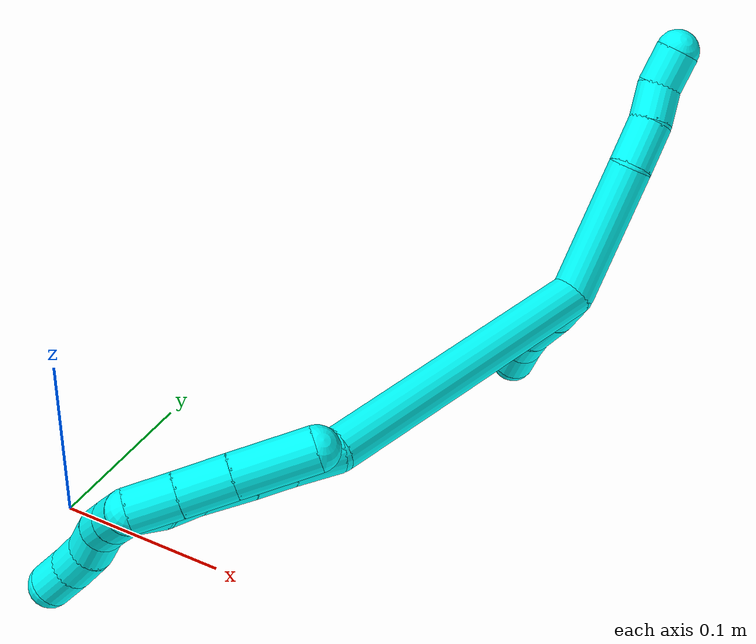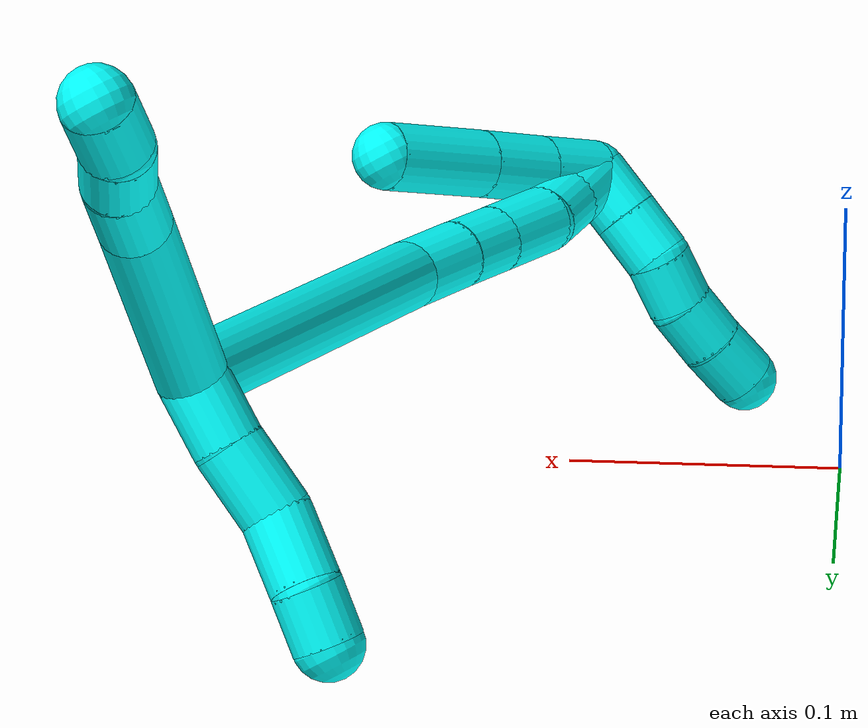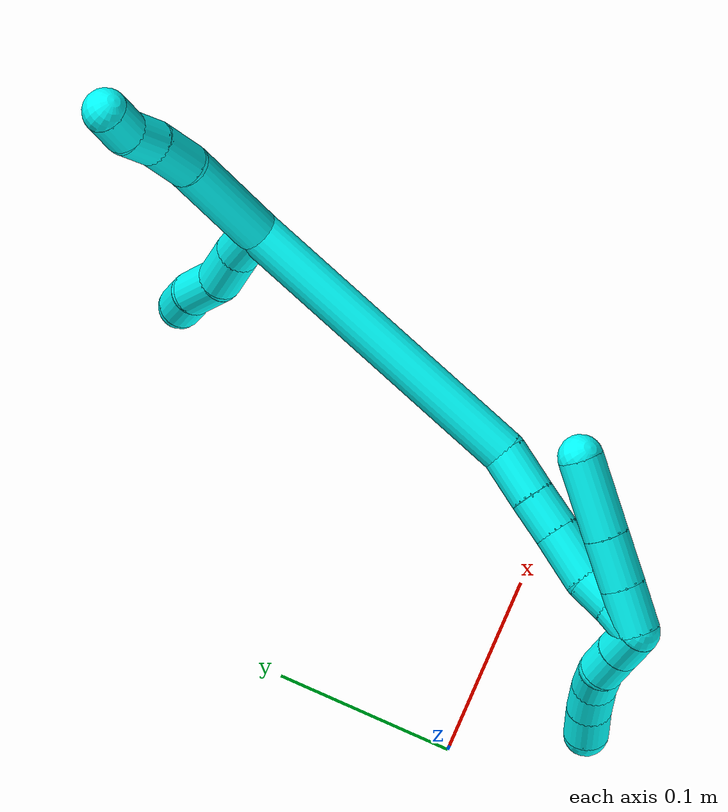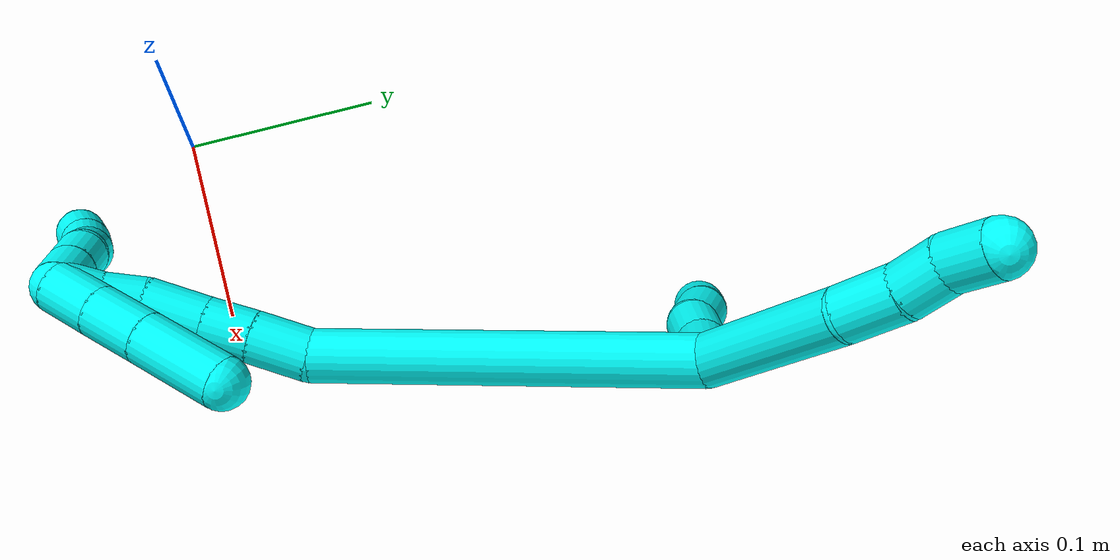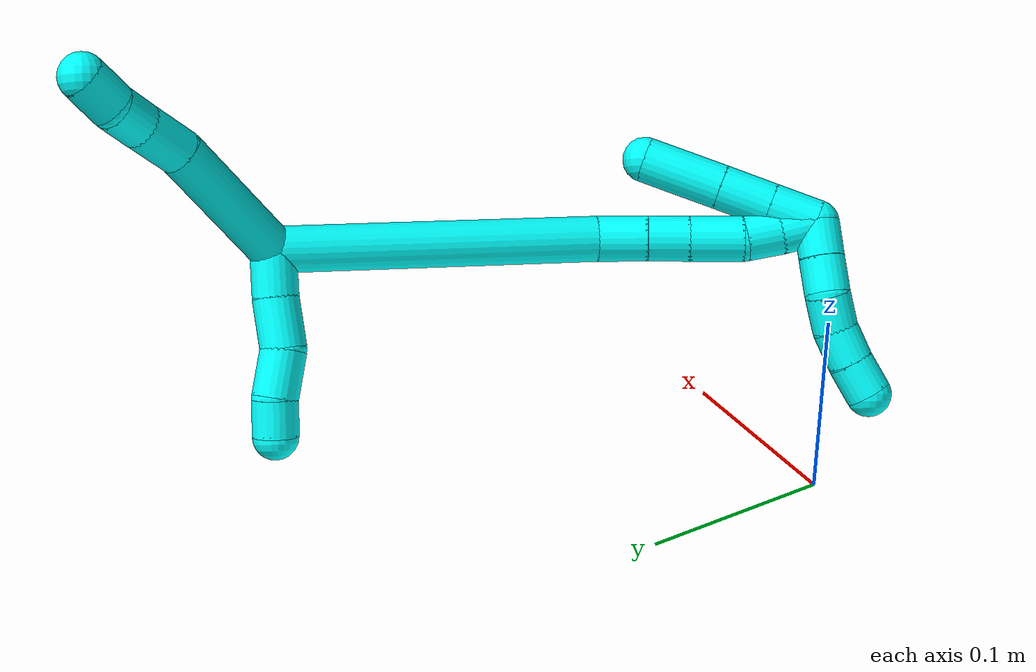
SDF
<sdf version="1.7">
 <world name="default">
  <model name="3">
   <static>0</static>
   <link name="3">
    <collision name="collision-cylinder-e_1_2_8">
     <pose>-0.010058 0.028916 0.024742 -0.863038 -0.258393 0.119504</pose>
     <geometry><cylinder><radius>0.0125</radius><length>0.078726</length></cylinder></geometry>
     <surface>
      <friction><ode><mu>1.16</mu><mu2>1.16</mu2><slip1>0</slip1><slip2>0</slip2></ode></friction>
      <contact><ode><kp>1e+06</kp><kd>1</kd><max_vel>0</max_vel><min_depth>0.001</min_depth></ode></contact>
     </surface>
    </collision>
    <visual name="visual-cylinder-e_1_2_8">
     <pose>-0.010058 0.028916 0.024742 -0.863038 -0.258393 0.119504</pose>
     <geometry><cylinder><radius>0.0125</radius><length>0.078726</length></cylinder></geometry>
     <material><ambient>0.003922 1 0.996078 1</ambient></material>
    </visual>
    <collision name="collision-cylinder-e_2_8_9">
     <pose>-0.023659 0.069598 0.055884 -1.07261 -0.258528 0.154229</pose>
     <geometry><cylinder><radius>0.0125</radius><length>0.02771</length></cylinder></geometry>
     <surface>
      <friction><ode><mu>1.16</mu><mu2>1.16</mu2><slip1>0</slip1><slip2>0</slip2></ode></friction>
      <contact><ode><kp>1e+06</kp><kd>1</kd><max_vel>0</max_vel><min_depth>0.001</min_depth></ode></contact>
     </surface>
    </collision>
    <visual name="visual-cylinder-e_2_8_9">
     <pose>-0.023659 0.069598 0.055884 -1.07261 -0.258528 0.154229</pose>
     <geometry><cylinder><radius>0.0125</radius><length>0.02771</length></cylinder></geometry>
     <material><ambient>0.003922 1 0.996078 1</ambient></material>
    </visual>
    <collision name="collision-cylinder-e_3_9_10">
     <pose>-0.031672 0.090077 0.066561 -1.11439 -0.431651 0.271514</pose>
     <geometry><cylinder><radius>0.0125</radius><length>0.021371</length></cylinder></geometry>
     <surface>
      <friction><ode><mu>1.16</mu><mu2>1.16</mu2><slip1>0</slip1><slip2>0</slip2></ode></friction>
      <contact><ode><kp>1e+06</kp><kd>1</kd><max_vel>0</max_vel><min_depth>0.001</min_depth></ode></contact>
     </surface>
    </collision>
    <visual name="visual-cylinder-e_3_9_10">
     <pose>-0.031672 0.090077 0.066561 -1.11439 -0.431651 0.271514</pose>
     <geometry><cylinder><radius>0.0125</radius><length>0.021371</length></cylinder></geometry>
     <material><ambient>0.003922 1 0.996078 1</ambient></material>
    </visual>
    <collision name="collision-cylinder-e_4_10_6">
     <pose>-0.038431 0.107151 0.077765 -0.879082 -0.207753 0.097964</pose>
     <geometry><cylinder><radius>0.0125</radius><length>0.022192</length></cylinder></geometry>
     <surface>
      <friction><ode><mu>1.16</mu><mu2>1.16</mu2><slip1>0</slip1><slip2>0</slip2></ode></friction>
      <contact><ode><kp>1e+06</kp><kd>1</kd><max_vel>0</max_vel><min_depth>0.001</min_depth></ode></contact>
     </surface>
    </collision>
    <visual name="visual-cylinder-e_4_10_6">
     <pose>-0.038431 0.107151 0.077765 -0.879082 -0.207753 0.097964</pose>
     <geometry><cylinder><radius>0.0125</radius><length>0.022192</length></cylinder></geometry>
     <material><ambient>0.003922 1 0.996078 1</ambient></material>
    </visual>
    <collision name="collision-cylinder-e_1_2_11">
     <pose>-1.4e-05 -0.000151 -0.012806 3.1298 -0.001055 -0.178424</pose>
     <geometry><cylinder><radius>0.0125</radius><length>0.025614</length></cylinder></geometry>
     <surface>
      <friction><ode><mu>1.16</mu><mu2>1.16</mu2><slip1>0</slip1><slip2>0</slip2></ode></friction>
      <contact><ode><kp>1e+06</kp><kd>1</kd><max_vel>0</max_vel><min_depth>0.001</min_depth></ode></contact>
     </surface>
    </collision>
    <visual name="visual-cylinder-e_1_2_11">
     <pose>-1.4e-05 -0.000151 -0.012806 3.1298 -0.001055 -0.178424</pose>
     <geometry><cylinder><radius>0.0125</radius><length>0.025614</length></cylinder></geometry>
     <material><ambient>0.003922 1 0.996078 1</ambient></material>
    </visual>
    <collision name="collision-cylinder-e_2_11_12">
     <pose>-0.001534 -0.001314 -0.039361 3.06813 -0.108918 -1.95534</pose>
     <geometry><cylinder><radius>0.0125</radius><length>0.027736</length></cylinder></geometry>
     <surface>
      <friction><ode><mu>1.16</mu><mu2>1.16</mu2><slip1>0</slip1><slip2>0</slip2></ode></friction>
      <contact><ode><kp>1e+06</kp><kd>1</kd><max_vel>0</max_vel><min_depth>0.001</min_depth></ode></contact>
     </surface>
    </collision>
    <visual name="visual-cylinder-e_2_11_12">
     <pose>-0.001534 -0.001314 -0.039361 3.06813 -0.108918 -1.95534</pose>
     <geometry><cylinder><radius>0.0125</radius><length>0.027736</length></cylinder></geometry>
     <material><ambient>0.003922 1 0.996078 1</ambient></material>
    </visual>
    <collision name="collision-cylinder-e_3_12_13">
     <pose>-0.00241 0.000466 -0.066 -2.92836 0.04784 -0.439862</pose>
     <geometry><cylinder><radius>0.0125</radius><length>0.02641</length></cylinder></geometry>
     <surface>
      <friction><ode><mu>1.16</mu><mu2>1.16</mu2><slip1>0</slip1><slip2>0</slip2></ode></friction>
      <contact><ode><kp>1e+06</kp><kd>1</kd><max_vel>0</max_vel><min_depth>0.001</min_depth></ode></contact>
     </surface>
    </collision>
    <visual name="visual-cylinder-e_3_12_13">
     <pose>-0.00241 0.000466 -0.066 -2.92836 0.04784 -0.439862</pose>
     <geometry><cylinder><radius>0.0125</radius><length>0.02641</length></cylinder></geometry>
     <material><ambient>0.003922 1 0.996078 1</ambient></material>
    </visual>
    <collision name="collision-cylinder-e_4_13_5">
     <pose>-0.000564 0.002953 -0.088934 3.11135 0.120377 2.64979</pose>
     <geometry><cylinder><radius>0.0125</radius><length>0.02024</length></cylinder></geometry>
     <surface>
      <friction><ode><mu>1.16</mu><mu2>1.16</mu2><slip1>0</slip1><slip2>0</slip2></ode></friction>
      <contact><ode><kp>1e+06</kp><kd>1</kd><max_vel>0</max_vel><min_depth>0.001</min_depth></ode></contact>
     </surface>
    </collision>
    <visual name="visual-cylinder-e_4_13_5">
     <pose>-0.000564 0.002953 -0.088934 3.11135 0.120377 2.64979</pose>
     <geometry><cylinder><radius>0.0125</radius><length>0.02024</length></cylinder></geometry>
     <material><ambient>0.003922 1 0.996078 1</ambient></material>
    </visual>
    <collision name="collision-cylinder-e_1_2_14">
     <pose>-0.02362 -0.08613 0.00013 1.56929 -0.267657 -0.267258</pose>
     <geometry><cylinder><radius>0.0125</radius><length>0.178621</length></cylinder></geometry>
     <surface>
      <friction><ode><mu>1.16</mu><mu2>1.16</mu2><slip1>0</slip1><slip2>0</slip2></ode></friction>
      <contact><ode><kp>1e+06</kp><kd>1</kd><max_vel>0</max_vel><min_depth>0.001</min_depth></ode></contact>
     </surface>
    </collision>
    <visual name="visual-cylinder-e_1_2_14">
     <pose>-0.02362 -0.08613 0.00013 1.56929 -0.267657 -0.267258</pose>
     <geometry><cylinder><radius>0.0125</radius><length>0.178621</length></cylinder></geometry>
     <material><ambient>0.003922 1 0.996078 1</ambient></material>
    </visual>
    <collision name="collision-cylinder-e_2_14_15">
     <pose>-0.054742 -0.184104 -0.000308 1.61872 -0.564114 -0.590274</pose>
     <geometry><cylinder><radius>0.0125</radius><length>0.028062</length></cylinder></geometry>
     <surface>
      <friction><ode><mu>1.16</mu><mu2>1.16</mu2><slip1>0</slip1><slip2>0</slip2></ode></friction>
      <contact><ode><kp>1e+06</kp><kd>1</kd><max_vel>0</max_vel><min_depth>0.001</min_depth></ode></contact>
     </surface>
    </collision>
    <visual name="visual-cylinder-e_2_14_15">
     <pose>-0.054742 -0.184104 -0.000308 1.61872 -0.564114 -0.590274</pose>
     <geometry><cylinder><radius>0.0125</radius><length>0.028062</length></cylinder></geometry>
     <material><ambient>0.003922 1 0.996078 1</ambient></material>
    </visual>
    <collision name="collision-cylinder-e_3_15_16">
     <pose>-0.068049 -0.205808 -0.001434 1.62732 -0.53132 -0.560678</pose>
     <geometry><cylinder><radius>0.0125</radius><length>0.022913</length></cylinder></geometry>
     <surface>
      <friction><ode><mu>1.16</mu><mu2>1.16</mu2><slip1>0</slip1><slip2>0</slip2></ode></friction>
      <contact><ode><kp>1e+06</kp><kd>1</kd><max_vel>0</max_vel><min_depth>0.001</min_depth></ode></contact>
     </surface>
    </collision>
    <visual name="visual-cylinder-e_3_15_16">
     <pose>-0.068049 -0.205808 -0.001434 1.62732 -0.53132 -0.560678</pose>
     <geometry><cylinder><radius>0.0125</radius><length>0.022913</length></cylinder></geometry>
     <material><ambient>0.003922 1 0.996078 1</ambient></material>
    </visual>
    <collision name="collision-cylinder-e_4_16_17">
     <pose>-0.081772 -0.228241 -0.002712 1.628 -0.561373 -0.592586</pose>
     <geometry><cylinder><radius>0.0125</radius><length>0.02975</length></cylinder></geometry>
     <surface>
      <friction><ode><mu>1.16</mu><mu2>1.16</mu2><slip1>0</slip1><slip2>0</slip2></ode></friction>
      <contact><ode><kp>1e+06</kp><kd>1</kd><max_vel>0</max_vel><min_depth>0.001</min_depth></ode></contact>
     </surface>
    </collision>
    <visual name="visual-cylinder-e_4_16_17">
     <pose>-0.081772 -0.228241 -0.002712 1.628 -0.561373 -0.592586</pose>
     <geometry><cylinder><radius>0.0125</radius><length>0.02975</length></cylinder></geometry>
     <material><ambient>0.003922 1 0.996078 1</ambient></material>
    </visual>
    <collision name="collision-cylinder-e_5_17_18">
     <pose>-0.093827 -0.250045 -0.001925 1.409 -0.416305 -0.355279</pose>
     <geometry><cylinder><radius>0.0125</radius><length>0.020455</length></cylinder></geometry>
     <surface>
      <friction><ode><mu>1.16</mu><mu2>1.16</mu2><slip1>0</slip1><slip2>0</slip2></ode></friction>
      <contact><ode><kp>1e+06</kp><kd>1</kd><max_vel>0</max_vel><min_depth>0.001</min_depth></ode></contact>
     </surface>
    </collision>
    <visual name="visual-cylinder-e_5_17_18">
     <pose>-0.093827 -0.250045 -0.001925 1.409 -0.416305 -0.355279</pose>
     <geometry><cylinder><radius>0.0125</radius><length>0.020455</length></cylinder></geometry>
     <material><ambient>0.003922 1 0.996078 1</ambient></material>
    </visual>
    <collision name="collision-cylinder-e_6_18_1">
     <pose>-0.103515 -0.267452 0.001663 1.32147 -0.582137 -0.457561</pose>
     <geometry><cylinder><radius>0.0125</radius><length>0.020199</length></cylinder></geometry>
     <surface>
      <friction><ode><mu>1.16</mu><mu2>1.16</mu2><slip1>0</slip1><slip2>0</slip2></ode></friction>
      <contact><ode><kp>1e+06</kp><kd>1</kd><max_vel>0</max_vel><min_depth>0.001</min_depth></ode></contact>
     </surface>
    </collision>
    <visual name="visual-cylinder-e_6_18_1">
     <pose>-0.103515 -0.267452 0.001663 1.32147 -0.582137 -0.457561</pose>
     <geometry><cylinder><radius>0.0125</radius><length>0.020199</length></cylinder></geometry>
     <material><ambient>0.003922 1 0.996078 1</ambient></material>
    </visual>
    <collision name="collision-cylinder-e_1_1_19">
     <pose>-0.110799 -0.27555 -0.006104 -3.13379 -0.173902 3.05214</pose>
     <geometry><cylinder><radius>0.0125</radius><length>0.02</length></cylinder></geometry>
     <surface>
      <friction><ode><mu>1.16</mu><mu2>1.16</mu2><slip1>0</slip1><slip2>0</slip2></ode></friction>
      <contact><ode><kp>1e+06</kp><kd>1</kd><max_vel>0</max_vel><min_depth>0.001</min_depth></ode></contact>
     </surface>
    </collision>
    <visual name="visual-cylinder-e_1_1_19">
     <pose>-0.110799 -0.27555 -0.006104 -3.13379 -0.173902 3.05214</pose>
     <geometry><cylinder><radius>0.0125</radius><length>0.02</length></cylinder></geometry>
     <material><ambient>0.003922 1 0.996078 1</ambient></material>
    </visual>
    <collision name="collision-cylinder-e_2_19_20">
     <pose>-0.114149 -0.275635 -0.025819 3.12525 -0.162735 -2.94182</pose>
     <geometry><cylinder><radius>0.0125</radius><length>0.02</length></cylinder></geometry>
     <surface>
      <friction><ode><mu>1.16</mu><mu2>1.16</mu2><slip1>0</slip1><slip2>0</slip2></ode></friction>
      <contact><ode><kp>1e+06</kp><kd>1</kd><max_vel>0</max_vel><min_depth>0.001</min_depth></ode></contact>
     </surface>
    </collision>
    <visual name="visual-cylinder-e_2_19_20">
     <pose>-0.114149 -0.275635 -0.025819 3.12525 -0.162735 -2.94182</pose>
     <geometry><cylinder><radius>0.0125</radius><length>0.02</length></cylinder></geometry>
     <material><ambient>0.003922 1 0.996078 1</ambient></material>
    </visual>
    <collision name="collision-cylinder-e_3_20_21">
     <pose>-0.115096 -0.278412 -0.045314 2.87626 0.067414 0.495</pose>
     <geometry><cylinder><radius>0.0125</radius><length>0.02</length></cylinder></geometry>
     <surface>
      <friction><ode><mu>1.16</mu><mu2>1.16</mu2><slip1>0</slip1><slip2>0</slip2></ode></friction>
      <contact><ode><kp>1e+06</kp><kd>1</kd><max_vel>0</max_vel><min_depth>0.001</min_depth></ode></contact>
     </surface>
    </collision>
    <visual name="visual-cylinder-e_3_20_21">
     <pose>-0.115096 -0.278412 -0.045314 2.87626 0.067414 0.495</pose>
     <geometry><cylinder><radius>0.0125</radius><length>0.02</length></cylinder></geometry>
     <material><ambient>0.003922 1 0.996078 1</ambient></material>
    </visual>
    <collision name="collision-cylinder-e_4_21_22">
     <pose>-0.115748 -0.284607 -0.064185 2.77226 -0.133011 -0.685013</pose>
     <geometry><cylinder><radius>0.0125</radius><length>0.02</length></cylinder></geometry>
     <surface>
      <friction><ode><mu>1.16</mu><mu2>1.16</mu2><slip1>0</slip1><slip2>0</slip2></ode></friction>
      <contact><ode><kp>1e+06</kp><kd>1</kd><max_vel>0</max_vel><min_depth>0.001</min_depth></ode></contact>
     </surface>
    </collision>
    <visual name="visual-cylinder-e_4_21_22">
     <pose>-0.115748 -0.284607 -0.064185 2.77226 -0.133011 -0.685013</pose>
     <geometry><cylinder><radius>0.0125</radius><length>0.02</length></cylinder></geometry>
     <material><ambient>0.003922 1 0.996078 1</ambient></material>
    </visual>
    <collision name="collision-cylinder-e_5_22_4">
     <pose>-0.11888 -0.29246 -0.082286 2.69187 -0.181548 -0.757491</pose>
     <geometry><cylinder><radius>0.0125</radius><length>0.02</length></cylinder></geometry>
     <surface>
      <friction><ode><mu>1.16</mu><mu2>1.16</mu2><slip1>0</slip1><slip2>0</slip2></ode></friction>
      <contact><ode><kp>1e+06</kp><kd>1</kd><max_vel>0</max_vel><min_depth>0.001</min_depth></ode></contact>
     </surface>
    </collision>
    <visual name="visual-cylinder-e_5_22_4">
     <pose>-0.11888 -0.29246 -0.082286 2.69187 -0.181548 -0.757491</pose>
     <geometry><cylinder><radius>0.0125</radius><length>0.02</length></cylinder></geometry>
     <material><ambient>0.003922 1 0.996078 1</ambient></material>
    </visual>
    <collision name="collision-cylinder-e_1_1_23">
     <pose>-0.101857 -0.265749 0.00899 -1.08269 0.572724 -0.350455</pose>
     <geometry><cylinder><radius>0.0125</radius><length>0.026616</length></cylinder></geometry>
     <surface>
      <friction><ode><mu>1.16</mu><mu2>1.16</mu2><slip1>0</slip1><slip2>0</slip2></ode></friction>
      <contact><ode><kp>1e+06</kp><kd>1</kd><max_vel>0</max_vel><min_depth>0.001</min_depth></ode></contact>
     </surface>
    </collision>
    <visual name="visual-cylinder-e_1_1_23">
     <pose>-0.101857 -0.265749 0.00899 -1.08269 0.572724 -0.350455</pose>
     <geometry><cylinder><radius>0.0125</radius><length>0.026616</length></cylinder></geometry>
     <material><ambient>0.003922 1 0.996078 1</ambient></material>
    </visual>
    <collision name="collision-cylinder-e_2_23_24">
     <pose>-0.086946 -0.245049 0.019972 -1.08332 0.561123 -0.343354</pose>
     <geometry><cylinder><radius>0.0125</radius><length>0.028935</length></cylinder></geometry>
     <surface>
      <friction><ode><mu>1.16</mu><mu2>1.16</mu2><slip1>0</slip1><slip2>0</slip2></ode></friction>
      <contact><ode><kp>1e+06</kp><kd>1</kd><max_vel>0</max_vel><min_depth>0.001</min_depth></ode></contact>
     </surface>
    </collision>
    <visual name="visual-cylinder-e_2_23_24">
     <pose>-0.086946 -0.245049 0.019972 -1.08332 0.561123 -0.343354</pose>
     <geometry><cylinder><radius>0.0125</radius><length>0.028935</length></cylinder></geometry>
     <material><ambient>0.003922 1 0.996078 1</ambient></material>
    </visual>
    <collision name="collision-cylinder-e_3_24_3">
     <pose>-0.067244 -0.217656 0.034386 -1.08846 0.570536 -0.351308</pose>
     <geometry><cylinder><radius>0.0125</radius><length>0.044449</length></cylinder></geometry>
     <surface>
      <friction><ode><mu>1.16</mu><mu2>1.16</mu2><slip1>0</slip1><slip2>0</slip2></ode></friction>
      <contact><ode><kp>1e+06</kp><kd>1</kd><max_vel>0</max_vel><min_depth>0.001</min_depth></ode></contact>
     </surface>
    </collision>
    <visual name="visual-cylinder-e_3_24_3">
     <pose>-0.067244 -0.217656 0.034386 -1.08846 0.570536 -0.351308</pose>
     <geometry><cylinder><radius>0.0125</radius><length>0.044449</length></cylinder></geometry>
     <material><ambient>0.003922 1 0.996078 1</ambient></material>
    </visual>
    <collision name="collision-sphere-3">
     <pose>-0.055241 -0.201085 0.043062 0 -0 0</pose>
     <geometry><sphere><radius>0.0125</radius></sphere></geometry>
     <surface>
      <friction><ode><mu>1.16</mu><mu2>1.16</mu2><slip1>0</slip1><slip2>0</slip2></ode></friction>
      <contact><ode><kp>1e+06</kp><kd>1</kd><max_vel>0</max_vel><min_depth>0.001</min_depth></ode></contact>
     </surface>
    </collision>
    <visual name="visual-sphere-3">
     <pose>-0.055241 -0.201085 0.043062 0 -0 0</pose>
     <geometry><sphere><radius>0.0125</radius></sphere></geometry>
     <material><ambient>0.003922 1 0.996078 1</ambient></material>
    </visual>
    <collision name="collision-sphere-24">
     <pose>-0.079247 -0.234226 0.02571 0 -0 0</pose>
     <geometry><sphere><radius>0.0125</radius></sphere></geometry>
     <surface>
      <friction><ode><mu>1.16</mu><mu2>1.16</mu2><slip1>0</slip1><slip2>0</slip2></ode></friction>
      <contact><ode><kp>1e+06</kp><kd>1</kd><max_vel>0</max_vel><min_depth>0.001</min_depth></ode></contact>
     </surface>
    </collision>
    <visual name="visual-sphere-24">
     <pose>-0.079247 -0.234226 0.02571 0 -0 0</pose>
     <geometry><sphere><radius>0.0125</radius></sphere></geometry>
     <material><ambient>0.003922 1 0.996078 1</ambient></material>
    </visual>
    <collision name="collision-sphere-23">
     <pose>-0.094645 -0.255871 0.014235 0 -0 0</pose>
     <geometry><sphere><radius>0.0125</radius></sphere></geometry>
     <surface>
      <friction><ode><mu>1.16</mu><mu2>1.16</mu2><slip1>0</slip1><slip2>0</slip2></ode></friction>
      <contact><ode><kp>1e+06</kp><kd>1</kd><max_vel>0</max_vel><min_depth>0.001</min_depth></ode></contact>
     </surface>
    </collision>
    <visual name="visual-sphere-23">
     <pose>-0.094645 -0.255871 0.014235 0 -0 0</pose>
     <geometry><sphere><radius>0.0125</radius></sphere></geometry>
     <material><ambient>0.003922 1 0.996078 1</ambient></material>
    </visual>
    <collision name="collision-sphere-4">
     <pose>-0.120685 -0.296736 -0.091144 0 -0 0</pose>
     <geometry><sphere><radius>0.0125</radius></sphere></geometry>
     <surface>
      <friction><ode><mu>1.16</mu><mu2>1.16</mu2><slip1>0</slip1><slip2>0</slip2></ode></friction>
      <contact><ode><kp>1e+06</kp><kd>1</kd><max_vel>0</max_vel><min_depth>0.001</min_depth></ode></contact>
     </surface>
    </collision>
    <visual name="visual-sphere-4">
     <pose>-0.120685 -0.296736 -0.091144 0 -0 0</pose>
     <geometry><sphere><radius>0.0125</radius></sphere></geometry>
     <material><ambient>0.003922 1 0.996078 1</ambient></material>
    </visual>
    <collision name="collision-sphere-22">
     <pose>-0.117074 -0.288185 -0.073429 0 -0 0</pose>
     <geometry><sphere><radius>0.0125</radius></sphere></geometry>
     <surface>
      <friction><ode><mu>1.16</mu><mu2>1.16</mu2><slip1>0</slip1><slip2>0</slip2></ode></friction>
      <contact><ode><kp>1e+06</kp><kd>1</kd><max_vel>0</max_vel><min_depth>0.001</min_depth></ode></contact>
     </surface>
    </collision>
    <visual name="visual-sphere-22">
     <pose>-0.117074 -0.288185 -0.073429 0 -0 0</pose>
     <geometry><sphere><radius>0.0125</radius></sphere></geometry>
     <material><ambient>0.003922 1 0.996078 1</ambient></material>
    </visual>
    <collision name="collision-sphere-21">
     <pose>-0.114422 -0.281029 -0.054942 0 -0 0</pose>
     <geometry><sphere><radius>0.0125</radius></sphere></geometry>
     <surface>
      <friction><ode><mu>1.16</mu><mu2>1.16</mu2><slip1>0</slip1><slip2>0</slip2></ode></friction>
      <contact><ode><kp>1e+06</kp><kd>1</kd><max_vel>0</max_vel><min_depth>0.001</min_depth></ode></contact>
     </surface>
    </collision>
    <visual name="visual-sphere-21">
     <pose>-0.114422 -0.281029 -0.054942 0 -0 0</pose>
     <geometry><sphere><radius>0.0125</radius></sphere></geometry>
     <material><ambient>0.003922 1 0.996078 1</ambient></material>
    </visual>
    <collision name="collision-sphere-20">
     <pose>-0.115769 -0.275796 -0.035686 0 -0 0</pose>
     <geometry><sphere><radius>0.0125</radius></sphere></geometry>
     <surface>
      <friction><ode><mu>1.16</mu><mu2>1.16</mu2><slip1>0</slip1><slip2>0</slip2></ode></friction>
      <contact><ode><kp>1e+06</kp><kd>1</kd><max_vel>0</max_vel><min_depth>0.001</min_depth></ode></contact>
     </surface>
    </collision>
    <visual name="visual-sphere-20">
     <pose>-0.115769 -0.275796 -0.035686 0 -0 0</pose>
     <geometry><sphere><radius>0.0125</radius></sphere></geometry>
     <material><ambient>0.003922 1 0.996078 1</ambient></material>
    </visual>
    <collision name="collision-sphere-11">
     <pose>-2.7e-05 -0.000302 -0.025612 0 -0 0</pose>
     <geometry><sphere><radius>0.0125</radius></sphere></geometry>
     <surface>
      <friction><ode><mu>1.16</mu><mu2>1.16</mu2><slip1>0</slip1><slip2>0</slip2></ode></friction>
      <contact><ode><kp>1e+06</kp><kd>1</kd><max_vel>0</max_vel><min_depth>0.001</min_depth></ode></contact>
     </surface>
    </collision>
    <visual name="visual-sphere-11">
     <pose>-2.7e-05 -0.000302 -0.025612 0 -0 0</pose>
     <geometry><sphere><radius>0.0125</radius></sphere></geometry>
     <material><ambient>0.003922 1 0.996078 1</ambient></material>
    </visual>
    <collision name="collision-sphere-6">
     <pose>-0.04072 0.115513 0.08469 0 -0 0</pose>
     <geometry><sphere><radius>0.0125</radius></sphere></geometry>
     <surface>
      <friction><ode><mu>1.16</mu><mu2>1.16</mu2><slip1>0</slip1><slip2>0</slip2></ode></friction>
      <contact><ode><kp>1e+06</kp><kd>1</kd><max_vel>0</max_vel><min_depth>0.001</min_depth></ode></contact>
     </surface>
    </collision>
    <visual name="visual-sphere-6">
     <pose>-0.04072 0.115513 0.08469 0 -0 0</pose>
     <geometry><sphere><radius>0.0125</radius></sphere></geometry>
     <material><ambient>0.003922 1 0.996078 1</ambient></material>
    </visual>
    <collision name="collision-sphere-10">
     <pose>-0.036142 0.098789 0.070839 0 -0 0</pose>
     <geometry><sphere><radius>0.0125</radius></sphere></geometry>
     <surface>
      <friction><ode><mu>1.16</mu><mu2>1.16</mu2><slip1>0</slip1><slip2>0</slip2></ode></friction>
      <contact><ode><kp>1e+06</kp><kd>1</kd><max_vel>0</max_vel><min_depth>0.001</min_depth></ode></contact>
     </surface>
    </collision>
    <visual name="visual-sphere-10">
     <pose>-0.036142 0.098789 0.070839 0 -0 0</pose>
     <geometry><sphere><radius>0.0125</radius></sphere></geometry>
     <material><ambient>0.003922 1 0.996078 1</ambient></material>
    </visual>
    <collision name="collision-sphere-9">
     <pose>-0.027201 0.081365 0.062284 0 -0 0</pose>
     <geometry><sphere><radius>0.0125</radius></sphere></geometry>
     <surface>
      <friction><ode><mu>1.16</mu><mu2>1.16</mu2><slip1>0</slip1><slip2>0</slip2></ode></friction>
      <contact><ode><kp>1e+06</kp><kd>1</kd><max_vel>0</max_vel><min_depth>0.001</min_depth></ode></contact>
     </surface>
    </collision>
    <visual name="visual-sphere-9">
     <pose>-0.027201 0.081365 0.062284 0 -0 0</pose>
     <geometry><sphere><radius>0.0125</radius></sphere></geometry>
     <material><ambient>0.003922 1 0.996078 1</ambient></material>
    </visual>
    <collision name="collision-sphere-2">
     <geometry><sphere><radius>0.0125</radius></sphere></geometry>
     <surface>
      <friction><ode><mu>1.16</mu><mu2>1.16</mu2><slip1>0</slip1><slip2>0</slip2></ode></friction>
      <contact><ode><kp>1e+06</kp><kd>1</kd><max_vel>0</max_vel><min_depth>0.001</min_depth></ode></contact>
     </surface>
    </collision>
    <visual name="visual-sphere-2">
     <geometry><sphere><radius>0.0125</radius></sphere></geometry>
     <material><ambient>0.003922 1 0.996078 1</ambient></material>
    </visual>
    <collision name="collision-sphere-19">
     <pose>-0.112529 -0.275473 -0.015953 0 -0 0</pose>
     <geometry><sphere><radius>0.0125</radius></sphere></geometry>
     <surface>
      <friction><ode><mu>1.16</mu><mu2>1.16</mu2><slip1>0</slip1><slip2>0</slip2></ode></friction>
      <contact><ode><kp>1e+06</kp><kd>1</kd><max_vel>0</max_vel><min_depth>0.001</min_depth></ode></contact>
     </surface>
    </collision>
    <visual name="visual-sphere-19">
     <pose>-0.112529 -0.275473 -0.015953 0 -0 0</pose>
     <geometry><sphere><radius>0.0125</radius></sphere></geometry>
     <material><ambient>0.003922 1 0.996078 1</ambient></material>
    </visual>
    <collision name="collision-sphere-8">
     <pose>-0.020117 0.057832 0.049483 0 -0 0</pose>
     <geometry><sphere><radius>0.0125</radius></sphere></geometry>
     <surface>
      <friction><ode><mu>1.16</mu><mu2>1.16</mu2><slip1>0</slip1><slip2>0</slip2></ode></friction>
      <contact><ode><kp>1e+06</kp><kd>1</kd><max_vel>0</max_vel><min_depth>0.001</min_depth></ode></contact>
     </surface>
    </collision>
    <visual name="visual-sphere-8">
     <pose>-0.020117 0.057832 0.049483 0 -0 0</pose>
     <geometry><sphere><radius>0.0125</radius></sphere></geometry>
     <material><ambient>0.003922 1 0.996078 1</ambient></material>
    </visual>
    <collision name="collision-sphere-12">
     <pose>-0.003042 -0.002326 -0.053109 0 -0 0</pose>
     <geometry><sphere><radius>0.0125</radius></sphere></geometry>
     <surface>
      <friction><ode><mu>1.16</mu><mu2>1.16</mu2><slip1>0</slip1><slip2>0</slip2></ode></friction>
      <contact><ode><kp>1e+06</kp><kd>1</kd><max_vel>0</max_vel><min_depth>0.001</min_depth></ode></contact>
     </surface>
    </collision>
    <visual name="visual-sphere-12">
     <pose>-0.003042 -0.002326 -0.053109 0 -0 0</pose>
     <geometry><sphere><radius>0.0125</radius></sphere></geometry>
     <material><ambient>0.003922 1 0.996078 1</ambient></material>
    </visual>
    <collision name="collision-sphere-13">
     <pose>-0.001779 0.003257 -0.078892 0 -0 0</pose>
     <geometry><sphere><radius>0.0125</radius></sphere></geometry>
     <surface>
      <friction><ode><mu>1.16</mu><mu2>1.16</mu2><slip1>0</slip1><slip2>0</slip2></ode></friction>
      <contact><ode><kp>1e+06</kp><kd>1</kd><max_vel>0</max_vel><min_depth>0.001</min_depth></ode></contact>
     </surface>
    </collision>
    <visual name="visual-sphere-13">
     <pose>-0.001779 0.003257 -0.078892 0 -0 0</pose>
     <geometry><sphere><radius>0.0125</radius></sphere></geometry>
     <material><ambient>0.003922 1 0.996078 1</ambient></material>
    </visual>
    <collision name="collision-sphere-5">
     <pose>0.000652 0.002649 -0.098976 0 -0 0</pose>
     <geometry><sphere><radius>0.0125</radius></sphere></geometry>
     <surface>
      <friction><ode><mu>1.16</mu><mu2>1.16</mu2><slip1>0</slip1><slip2>0</slip2></ode></friction>
      <contact><ode><kp>1e+06</kp><kd>1</kd><max_vel>0</max_vel><min_depth>0.001</min_depth></ode></contact>
     </surface>
    </collision>
    <visual name="visual-sphere-5">
     <pose>0.000652 0.002649 -0.098976 0 -0 0</pose>
     <geometry><sphere><radius>0.0125</radius></sphere></geometry>
     <material><ambient>0.003922 1 0.996078 1</ambient></material>
    </visual>
    <collision name="collision-sphere-14">
     <pose>-0.04724 -0.17226 0.00026 0 -0 0</pose>
     <geometry><sphere><radius>0.0125</radius></sphere></geometry>
     <surface>
      <friction><ode><mu>1.16</mu><mu2>1.16</mu2><slip1>0</slip1><slip2>0</slip2></ode></friction>
      <contact><ode><kp>1e+06</kp><kd>1</kd><max_vel>0</max_vel><min_depth>0.001</min_depth></ode></contact>
     </surface>
    </collision>
    <visual name="visual-sphere-14">
     <pose>-0.04724 -0.17226 0.00026 0 -0 0</pose>
     <geometry><sphere><radius>0.0125</radius></sphere></geometry>
     <material><ambient>0.003922 1 0.996078 1</ambient></material>
    </visual>
    <collision name="collision-sphere-15">
     <pose>-0.062244 -0.195947 -0.000876 0 -0 0</pose>
     <geometry><sphere><radius>0.0125</radius></sphere></geometry>
     <surface>
      <friction><ode><mu>1.16</mu><mu2>1.16</mu2><slip1>0</slip1><slip2>0</slip2></ode></friction>
      <contact><ode><kp>1e+06</kp><kd>1</kd><max_vel>0</max_vel><min_depth>0.001</min_depth></ode></contact>
     </surface>
    </collision>
    <visual name="visual-sphere-15">
     <pose>-0.062244 -0.195947 -0.000876 0 -0 0</pose>
     <geometry><sphere><radius>0.0125</radius></sphere></geometry>
     <material><ambient>0.003922 1 0.996078 1</ambient></material>
    </visual>
    <collision name="collision-sphere-16">
     <pose>-0.073853 -0.21567 -0.001992 0 -0 0</pose>
     <geometry><sphere><radius>0.0125</radius></sphere></geometry>
     <surface>
      <friction><ode><mu>1.16</mu><mu2>1.16</mu2><slip1>0</slip1><slip2>0</slip2></ode></friction>
      <contact><ode><kp>1e+06</kp><kd>1</kd><max_vel>0</max_vel><min_depth>0.001</min_depth></ode></contact>
     </surface>
    </collision>
    <visual name="visual-sphere-16">
     <pose>-0.073853 -0.21567 -0.001992 0 -0 0</pose>
     <geometry><sphere><radius>0.0125</radius></sphere></geometry>
     <material><ambient>0.003922 1 0.996078 1</ambient></material>
    </visual>
    <collision name="collision-sphere-17">
     <pose>-0.089691 -0.240813 -0.003432 0 -0 0</pose>
     <geometry><sphere><radius>0.0125</radius></sphere></geometry>
     <surface>
      <friction><ode><mu>1.16</mu><mu2>1.16</mu2><slip1>0</slip1><slip2>0</slip2></ode></friction>
      <contact><ode><kp>1e+06</kp><kd>1</kd><max_vel>0</max_vel><min_depth>0.001</min_depth></ode></contact>
     </surface>
    </collision>
    <visual name="visual-sphere-17">
     <pose>-0.089691 -0.240813 -0.003432 0 -0 0</pose>
     <geometry><sphere><radius>0.0125</radius></sphere></geometry>
     <material><ambient>0.003922 1 0.996078 1</ambient></material>
    </visual>
    <collision name="collision-sphere-18">
     <pose>-0.097962 -0.259276 -0.000418 0 -0 0</pose>
     <geometry><sphere><radius>0.0125</radius></sphere></geometry>
     <surface>
      <friction><ode><mu>1.16</mu><mu2>1.16</mu2><slip1>0</slip1><slip2>0</slip2></ode></friction>
      <contact><ode><kp>1e+06</kp><kd>1</kd><max_vel>0</max_vel><min_depth>0.001</min_depth></ode></contact>
     </surface>
    </collision>
    <visual name="visual-sphere-18">
     <pose>-0.097962 -0.259276 -0.000418 0 -0 0</pose>
     <geometry><sphere><radius>0.0125</radius></sphere></geometry>
     <material><ambient>0.003922 1 0.996078 1</ambient></material>
    </visual>
    <collision name="collision-sphere-1">
     <pose>-0.109068 -0.275627 0.003745 0 -0 0</pose>
     <geometry><sphere><radius>0.0125</radius></sphere></geometry>
     <surface>
      <friction><ode><mu>1.16</mu><mu2>1.16</mu2><slip1>0</slip1><slip2>0</slip2></ode></friction>
      <contact><ode><kp>1e+06</kp><kd>1</kd><max_vel>0</max_vel><min_depth>0.001</min_depth></ode></contact>
     </surface>
    </collision>
    <visual name="visual-sphere-1">
     <pose>-0.109068 -0.275627 0.003745 0 -0 0</pose>
     <geometry><sphere><radius>0.0125</radius></sphere></geometry>
     <material><ambient>0.003922 1 0.996078 1</ambient></material>
    </visual>
    <inertial>
     <pose>-0.048749 -0.114674 -0.000735 0 -0 0</pose>
     <mass>0.75</mass>
     <inertia>
      <ixx>0.00038</ixx>
      <ixy>0</ixy>
      <ixz>0</ixz>
      <iyy>-6.2e-05</iyy>
      <iyz>0</iyz>
      <izz>0.000561</izz>
     </inertia>
    </inertial>
   </link>
   <pose>0.210594 0.206059 0.098271 0.269284 0.513746 0.055658</pose>
  </model>
 </world>
</sdf>
